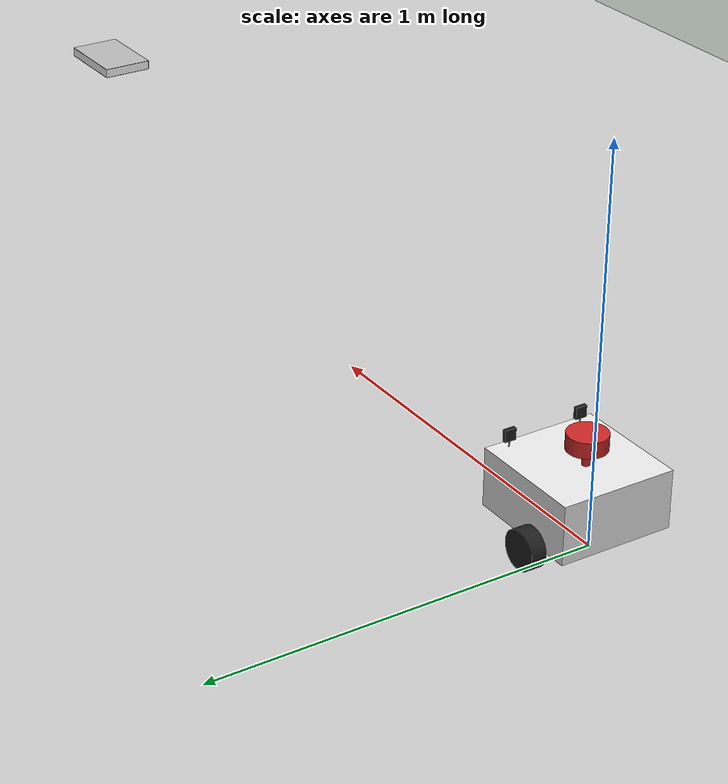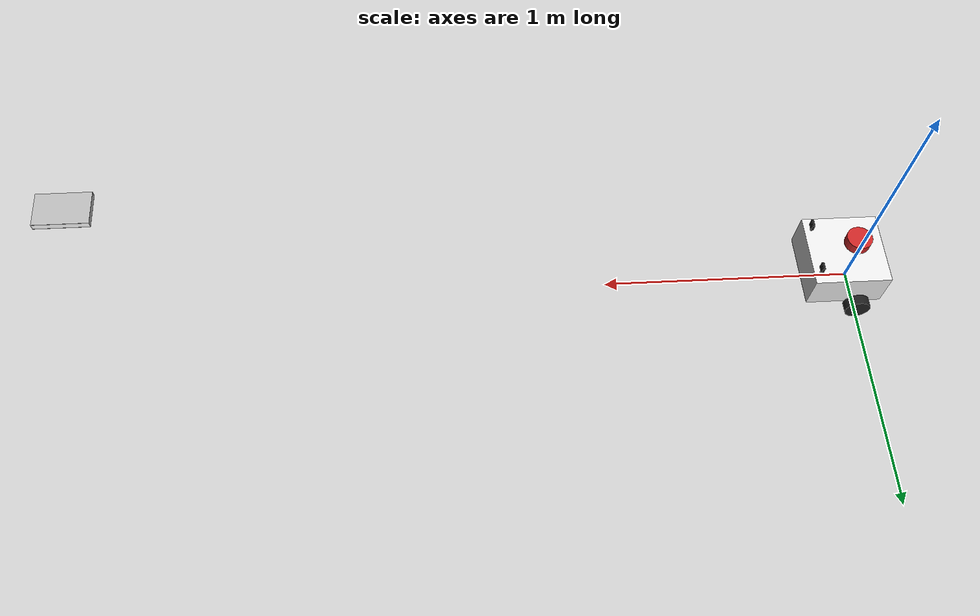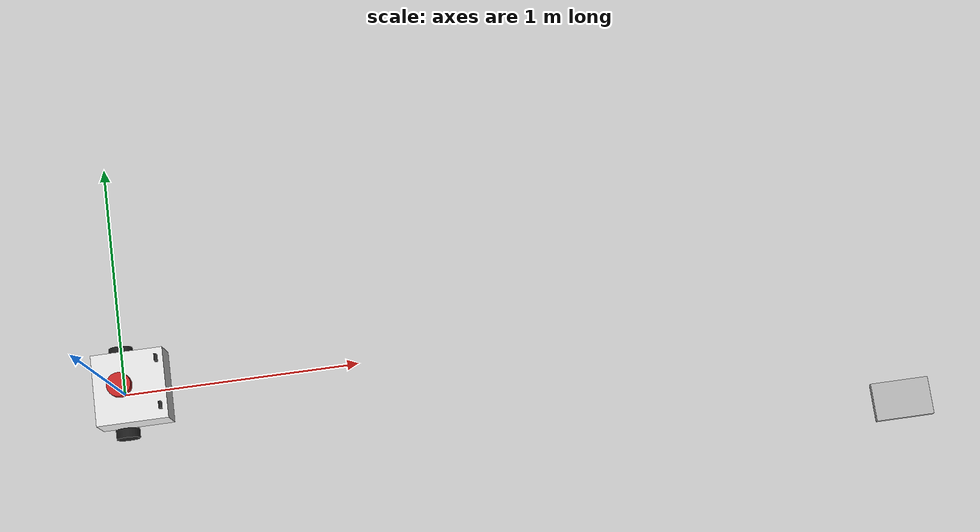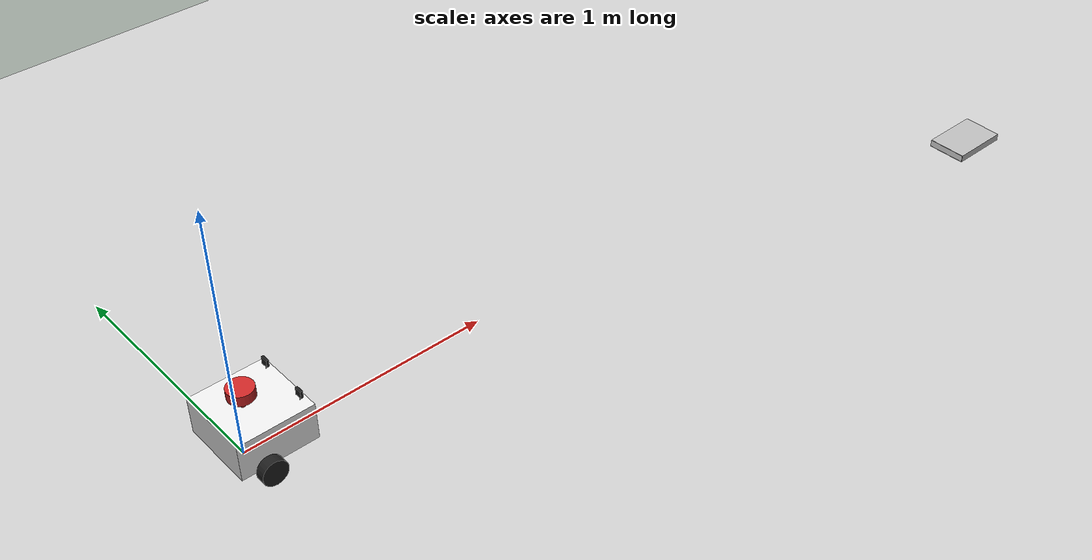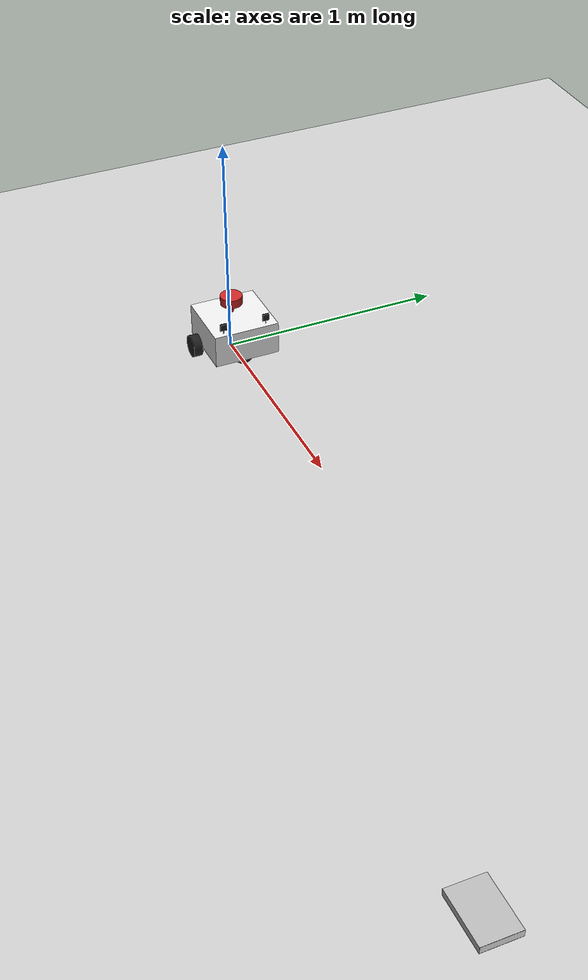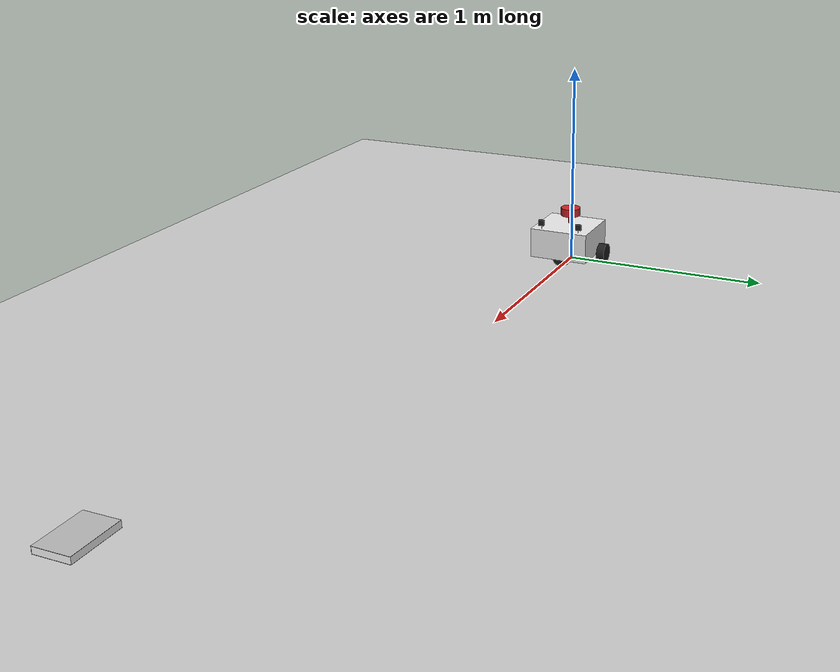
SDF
<sdf version="1.7">
 <world name="default">
  <light name="sun" type="directional">
   <pose>0 0 10 0 -0 0</pose>
   <diffuse>0.8 0.8 0.8 1</diffuse>
   <specular>0.2 0.2 0.2 1</specular>
   <attenuation>
    <range>1000</range>
    <constant>0.9</constant>
    <linear>0.01</linear>
    <quadratic>0.001</quadratic>
   </attenuation>
   <direction>-0.5 0.1 -0.9</direction>
   <spot><inner_angle>0</inner_angle><outer_angle>0</outer_angle><falloff>0</falloff></spot>
  </light>
  <model name="ground_plane">
   <static>1</static>
   <link name="link">
    <collision name="collision">
     <geometry><plane><normal>0 0 1</normal><size>100 100</size></plane></geometry>
     <surface><friction><ode><mu>100</mu><mu2>50</mu2></ode></friction></surface>
    </collision>
    <visual name="visual">
     <cast_shadows>0</cast_shadows>
     <geometry><plane><normal>0 0 1</normal><size>100 100</size></plane></geometry>
     <material>
      <script><uri>file://media/materials/scripts/gazebo.material</uri><name>Gazebo/Grey</name></script>
     </material>
    </visual>
   </link>
  </model>
  <gravity>0 0 -9.8</gravity>
  <magnetic_field>6e-06 2.3e-05 -4.2e-05</magnetic_field>
  <atmosphere type="adiabatic"/>
  <physics type="ode">
   <max_step_size>0.001</max_step_size>
   <real_time_factor>1</real_time_factor>
   <real_time_update_rate>1000</real_time_update_rate>
  </physics>
  <scene><ambient>0.4 0.4 0.4 1</ambient><background>0.7 0.7 0.7 1</background><shadows>1</shadows></scene>
  <spherical_coordinates>
   <surface_model>EARTH_WGS84</surface_model>
   <latitude_deg>0</latitude_deg>
   <longitude_deg>0</longitude_deg>
   <elevation>0</elevation>
   <heading_deg>0</heading_deg>
  </spherical_coordinates>
  <audio><device>default</device></audio>
  <model name="mobile_robot">
   <link name="base_link">
    <inertial>
     <pose>0.058857 0 0.083857 0 -0 0</pose>
     <mass>0.7</mass>
     <inertia>
      <ixx>0.00724782</ixx>
      <ixy>0</ixy>
      <ixz>0.00111351</ixz>
      <iyy>0.0080813</iyy>
      <iyz>0</iyz>
      <izz>0.00855849</izz>
     </inertia>
    </inertial>
    <collision name="base_link_fixed_joint_lump__chassis_collision">
     <pose>0.05 0 0.075 0 -0 0</pose>
     <geometry><box><size>0.3 0.3 0.15</size></box></geometry>
    </collision>
    <collision name="base_link_fixed_joint_lump__caster_wheel_collision_1">
     <pose>0.14 0 0 0 -0 0</pose>
     <geometry><sphere><radius>0.05</radius></sphere></geometry>
     <surface><friction><ode><mu>1e-07</mu><mu2>1e-07</mu2></ode></friction></surface>
    </collision>
    <collision name="base_link_fixed_joint_lump__laser_frame_collision_2">
     <pose>0.022 0 0.212 0 -0 0</pose>
     <geometry><cylinder><length>0.04</length><radius>0.05</radius></cylinder></geometry>
    </collision>
    <visual name="base_link_fixed_joint_lump__chassis_visual">
     <pose>0.05 0 0.075 0 -0 0</pose>
     <geometry><box><size>0.3 0.3 0.15</size></box></geometry>
     <material>
      <script><name>Gazebo/White</name><uri>file://media/materials/scripts/gazebo.material</uri></script>
     </material>
    </visual>
    <visual name="base_link_fixed_joint_lump__caster_wheel_visual_1">
     <pose>0.14 0 0 0 -0 0</pose>
     <geometry><sphere><radius>0.05</radius></sphere></geometry>
     <material>
      <script><name>Gazebo/Black</name><uri>file://media/materials/scripts/gazebo.material</uri></script>
     </material>
    </visual>
    <visual name="base_link_fixed_joint_lump__laser_frame_visual_2">
     <pose>0.022 0 0.212 0 -0 0</pose>
     <geometry><cylinder><length>0.04</length><radius>0.05</radius></cylinder></geometry>
     <material>
      <script><name>Gazebo/Red</name><uri>file://media/materials/scripts/gazebo.material</uri></script>
     </material>
    </visual>
    <visual name="base_link_fixed_joint_lump__laser_frame_visual_3">
     <pose>0.022 0 0.162 0 -0 0</pose>
     <geometry><cylinder><length>0.1</length><radius>0.01</radius></cylinder></geometry>
     <material>
      <script><name>Gazebo/Red</name><uri>file://media/materials/scripts/gazebo.material</uri></script>
     </material>
    </visual>
    <visual name="base_link_fixed_joint_lump__left_camera_link_visual_4">
     <pose>0.176 -0.1 0.181 0 -0 0</pose>
     <geometry><box><size>0.01 0.03 0.03</size></box></geometry>
     <material>
      <script><name>Gazebo/Black</name><uri>file://media/materials/scripts/gazebo.material</uri></script>
     </material>
    </visual>
    <visual name="base_link_fixed_joint_lump__left_camera_link_visual_5">
     <pose>0.176 -0.1 0.131 0 -0 0</pose>
     <geometry><cylinder><length>0.1</length><radius>0.002</radius></cylinder></geometry>
     <material>
      <script><name>Gazebo/Black</name><uri>file://media/materials/scripts/gazebo.material</uri></script>
     </material>
    </visual>
    <visual name="base_link_fixed_joint_lump__right_camera_link_visual_6">
     <pose>0.176 0.1 0.181 0 -0 0</pose>
     <geometry><box><size>0.01 0.03 0.03</size></box></geometry>
     <material>
      <script><name>Gazebo/Black</name><uri>file://media/materials/scripts/gazebo.material</uri></script>
     </material>
    </visual>
    <visual name="base_link_fixed_joint_lump__right_camera_link_visual_7">
     <pose>0.176 0.1 0.131 0 -0 0</pose>
     <geometry><cylinder><length>0.1</length><radius>0.002</radius></cylinder></geometry>
     <material>
      <script><name>Gazebo/Black</name><uri>file://media/materials/scripts/gazebo.material</uri></script>
     </material>
    </visual>
    <sensor name="laser" type="ray">
     <visualize>0</visualize>
     <update_rate>10</update_rate>
     <ray>
      <scan>
       <horizontal>
        <samples>360</samples>
        <min_angle>-3.14</min_angle>
        <max_angle>3.14</max_angle>
        <resolution>1</resolution>
       </horizontal>
       <vertical><samples>1</samples><min_angle>0</min_angle><max_angle>0</max_angle></vertical>
      </scan>
      <range><min>0.3</min><max>12</max></range>
     </ray>
     <plugin name="laser_controller" filename="libgazebo_ros_ray_sensor.so">
      <ros><argument>~/out:=scan</argument></ros>
      <output_type>sensor_msgs/LaserScan</output_type>
      <frame_name>laser_frame</frame_name>
     </plugin>
     <pose>0.022 0 0.212 0 -0 0</pose>
    </sensor>
    <sensor name="left_camera" type="camera">
     <visualize>1</visualize>
     <update_rate>10</update_rate>
     <camera>
      <horizontal_fov>1.089</horizontal_fov>
      <image><format>R8G8B8</format><width>640</width><height>480</height></image>
      <clip><near>0.01</near><far>5</far></clip>
     </camera>
     <plugin name="left_camera_controller" filename="libgazebo_ros_camera.so">
      <frame_name>left_camera_link_optical</frame_name>
     </plugin>
     <pose>0.176 -0.1 0.181 0 -0 0</pose>
    </sensor>
    <sensor name="right_camera" type="camera">
     <visualize>1</visualize>
     <update_rate>10</update_rate>
     <camera>
      <horizontal_fov>1.089</horizontal_fov>
      <image><format>R8G8B8</format><width>640</width><height>480</height></image>
      <clip><near>0.01</near><far>5</far></clip>
     </camera>
     <plugin name="right_camera_controller" filename="libgazebo_ros_camera.so">
      <frame_name>right_camera_link_optical</frame_name>
     </plugin>
     <pose>0.176 0.1 0.181 0 -0 0</pose>
    </sensor>
   </link>
   <joint name="left_wheel_joint" type="revolute">
    <pose relative_to="base_link">0 0.175 0 -1.5708 0 0</pose>
    <parent>base_link</parent>
    <child>left_wheel</child>
    <axis>
     <xyz>0 0 1</xyz>
     <limit><lower>-1e+16</lower><upper>1e+16</upper></limit>
     <dynamics><spring_reference>0</spring_reference><spring_stiffness>0</spring_stiffness></dynamics>
    </axis>
   </joint>
   <link name="left_wheel">
    <pose relative_to="left_wheel_joint">0 0 0 0 -0 0</pose>
    <inertial>
     <mass>0.1</mass>
     <inertia>
      <ixx>7.58333e-05</ixx>
      <ixy>0</ixy>
      <ixz>0</ixz>
      <iyy>7.58333e-05</iyy>
      <iyz>0</iyz>
      <izz>0.000125</izz>
     </inertia>
    </inertial>
    <collision name="left_wheel_collision">
     <geometry><cylinder><length>0.04</length><radius>0.05</radius></cylinder></geometry>
    </collision>
    <visual name="left_wheel_visual">
     <geometry><cylinder><length>0.04</length><radius>0.05</radius></cylinder></geometry>
     <material>
      <script><name>Gazebo/Black</name><uri>file://media/materials/scripts/gazebo.material</uri></script>
     </material>
    </visual>
   </link>
   <joint name="right_wheel_joint" type="revolute">
    <pose relative_to="base_link">0 -0.175 0 1.5708 -0 0</pose>
    <parent>base_link</parent>
    <child>right_wheel</child>
    <axis>
     <xyz>0 0 -1</xyz>
     <limit><lower>-1e+16</lower><upper>1e+16</upper></limit>
     <dynamics><spring_reference>0</spring_reference><spring_stiffness>0</spring_stiffness></dynamics>
    </axis>
   </joint>
   <link name="right_wheel">
    <pose relative_to="right_wheel_joint">0 0 0 0 -0 0</pose>
    <inertial>
     <mass>0.1</mass>
     <inertia>
      <ixx>7.58333e-05</ixx>
      <ixy>0</ixy>
      <ixz>0</ixz>
      <iyy>7.58333e-05</iyy>
      <iyz>0</iyz>
      <izz>0.000125</izz>
     </inertia>
    </inertial>
    <collision name="right_wheel_collision">
     <geometry><cylinder><length>0.04</length><radius>0.05</radius></cylinder></geometry>
    </collision>
    <visual name="right_wheel_visual">
     <geometry><cylinder><length>0.04</length><radius>0.05</radius></cylinder></geometry>
     <material>
      <script><name>Gazebo/Black</name><uri>file://media/materials/scripts/gazebo.material</uri></script>
     </material>
    </visual>
   </link>
   <static>0</static>
   <plugin name="motor_contro" filename="libgazebo_ros_diff_drive.so">
    <left_joint>left_wheel_joint</left_joint>
    <right_joint>right_wheel_joint</right_joint>
    <wheel_separation>0.35</wheel_separation>
    <wheel_diameter>0.1</wheel_diameter>
    <max_wheel_torque>200</max_wheel_torque>
    <wheel_acceleration>10.0</wheel_acceleration>
    <odometry_frame>odom</odometry_frame>
    <robot_base_frame>base_link</robot_base_frame>
    <publish_odom>1</publish_odom>
    <publish_odom_tf>1</publish_odom_tf>
    <publish_wheel_tf>1</publish_wheel_tf>
   </plugin>
   <pose>0.00663 2.2e-05 0.05 0 1e-06 -0.001332</pose>
  </model>
  <model name="book_1">
   <link name="cover">
    <pose>0 -0.000108 0.015405 0 -0 0</pose>
    <visual name="visual">
     <geometry><box><size>0.245 0.16 0.03</size></box></geometry>
     <material>
      <script>
       <uri>model://book_1/materials/scripts</uri>
       <uri>model://book_1/materials/textures</uri>
       <name>book_1</name>
      </script>
     </material>
    </visual>
    <collision name="collision"><geometry><box><size>0.245 0.16 0.03</size></box></geometry></collision>
   </link>
   <link name="page">
    <pose>0 0.000608 0.015405 0 -0 0</pose>
    <visual name="visual">
     <geometry><box><size>0.24502 0.15862 0.028</size></box></geometry>
     <material>
      <lighting>1</lighting>
      <ambient>1 1 1 1</ambient>
      <diffuse>1 1 1 1</diffuse>
      <specular>0.01 0.01 0.01 1</specular>
      <emissive>0 0 0 1</emissive>
      <shader type="vertex"><normal_map>__default__</normal_map></shader>
     </material>
    </visual>
    <collision name="collision"><geometry><box><size>0.245 0.16 0.03</size></box></geometry></collision>
   </link>
   <static>1</static>
   <pose>3.2702 -0.474611 0 0 -0 0</pose>
  </model>
 </world>
</sdf>
